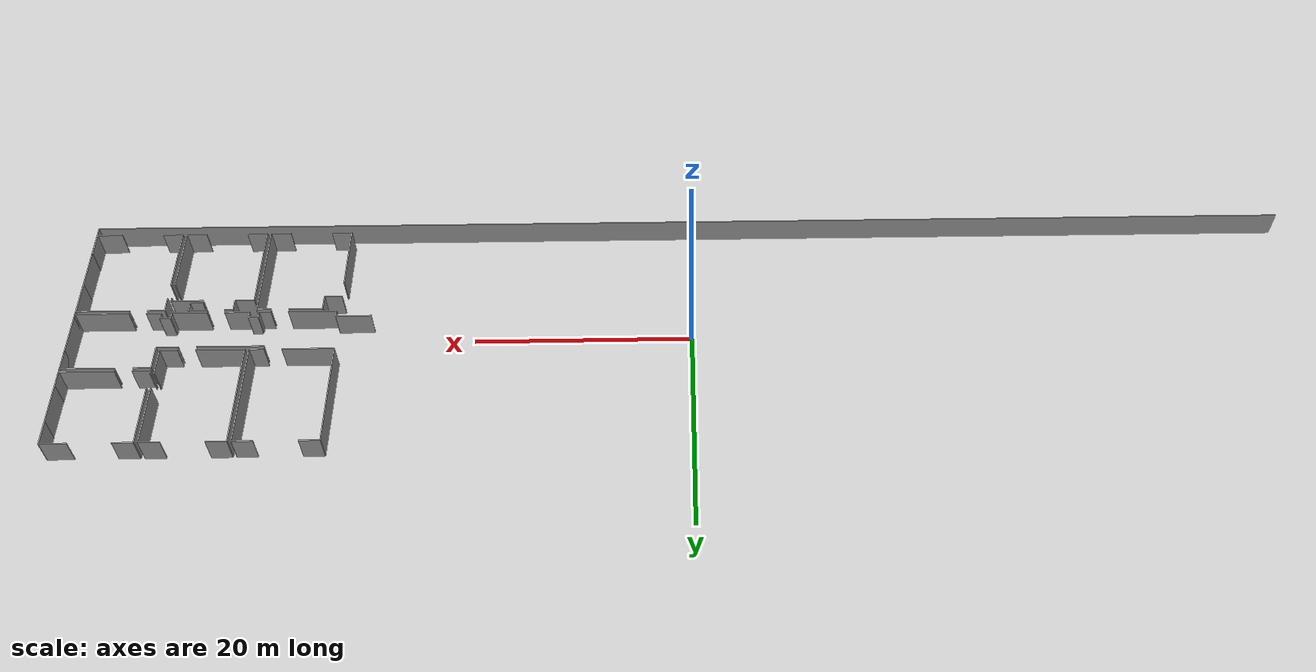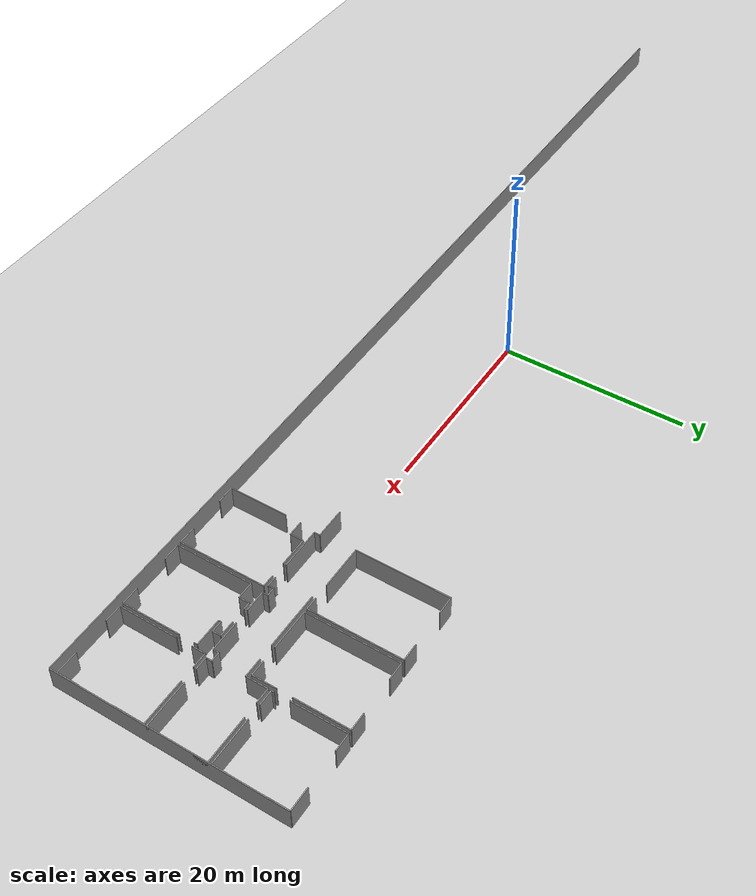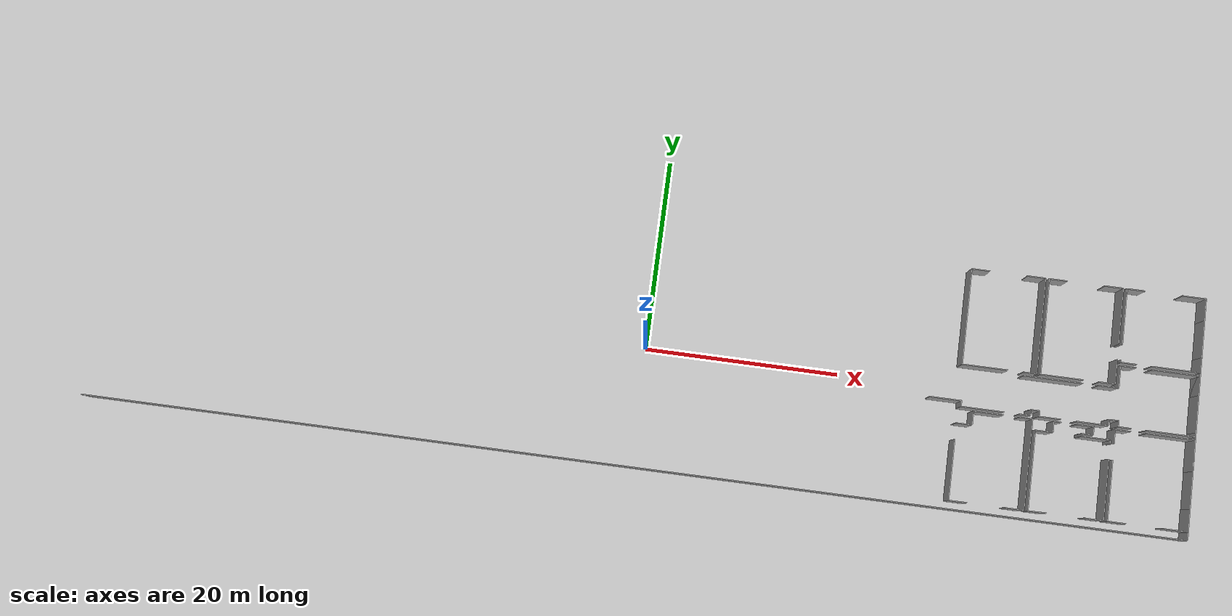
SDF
<sdf version="1.6">
 <world name="default">
  <model name="ground_plane">
   <static>1</static>
   <link name="link">
    <collision name="collision">
     <geometry><plane><normal>0 0 1</normal><size>100 100</size></plane></geometry>
     <surface><friction><ode><mu>100</mu><mu2>50</mu2></ode></friction></surface>
    </collision>
    <visual name="visual">
     <cast_shadows>0</cast_shadows>
     <geometry><plane><normal>0 0 1</normal><size>100 100</size></plane></geometry>
     <material>
      <script><uri>file://media/materials/scripts/gazebo.material</uri><name>Gazebo/Grey</name></script>
     </material>
    </visual>
   </link>
  </model>
  <model name="0510034691_Layout1">
   <static>1</static>
   <link name="Wall_241">
    <collision name="Wall_241_Collision">
     <geometry><box><size>10.0062279163 0.1 2.5</size></box></geometry>
     <pose>5.00311395816 0 1.25 0 0 0</pose>
    </collision>
    <visual name="Wall_241_Visual">
     <pose>5.00311395816 0 1.25 0 0 0</pose>
     <geometry><box><size>10.0062279163 0.1 2.5</size></box></geometry>
     <material>
      <script><uri>file://media/materials/scripts/gazebo.material</uri><name>Gazebo/Grey</name></script>
      <ambient>1 1 1 1</ambient>
     </material>
    </visual>
    <pose>88.8077988764 -10.0321563842 0 0 0 1.57079632679</pose>
   </link>
   <link name="Wall_242">
    <collision name="Wall_242_Collision">
     <geometry><box><size>1.88909224942 0.1 2.5</size></box></geometry>
     <pose>0.944546124711 0 1.25 0 0 0</pose>
    </collision>
    <visual name="Wall_242_Visual">
     <pose>0.944546124711 0 1.25 0 0 0</pose>
     <geometry><box><size>1.88909224942 0.1 2.5</size></box></geometry>
     <material>
      <script><uri>file://media/materials/scripts/gazebo.material</uri><name>Gazebo/Grey</name></script>
      <ambient>1 1 1 1</ambient>
     </material>
    </visual>
    <pose>88.8077988764 -0.0259284679326 0 0 0 0.0</pose>
   </link>
   <link name="Wall_243">
    <collision name="Wall_243_Collision">
     <geometry><box><size>1.88261013244 0.1 2.5</size></box></geometry>
     <pose>0.941305066219 0 1.25 0 0 0</pose>
    </collision>
    <visual name="Wall_243_Visual">
     <pose>0.941305066219 0 1.25 0 0 0</pose>
     <geometry><box><size>1.88261013244 0.1 2.5</size></box></geometry>
     <material>
      <script><uri>file://media/materials/scripts/gazebo.material</uri><name>Gazebo/Grey</name></script>
      <ambient>1 1 1 1</ambient>
     </material>
    </visual>
    <pose>94.596583543 -0.0259284679326 0 0 0 0.0</pose>
   </link>
   <link name="Wall_244">
    <collision name="Wall_244_Collision">
     <geometry><box><size>10.0012710033 0.1 2.5</size></box></geometry>
     <pose>5.00063550167 0 1.25 0 0 0</pose>
    </collision>
    <visual name="Wall_244_Visual">
     <pose>5.00063550167 0 1.25 0 0 0</pose>
     <geometry><box><size>10.0012710033 0.1 2.5</size></box></geometry>
     <material>
      <script><uri>file://media/materials/scripts/gazebo.material</uri><name>Gazebo/Grey</name></script>
      <ambient>1 1 1 1</ambient>
     </material>
    </visual>
    <pose>96.4791936755 -0.0259284679326 0 0 0 -1.57079632679</pose>
   </link>
   <link name="Wall_245">
    <collision name="Wall_245_Collision">
     <geometry><box><size>1.36149876713 0.1 2.5</size></box></geometry>
     <pose>0.680749383563 0 1.25 0 0 0</pose>
    </collision>
    <visual name="Wall_245_Visual">
     <pose>0.680749383563 0 1.25 0 0 0</pose>
     <geometry><box><size>1.36149876713 0.1 2.5</size></box></geometry>
     <material>
      <script><uri>file://media/materials/scripts/gazebo.material</uri><name>Gazebo/Grey</name></script>
      <ambient>1 1 1 1</ambient>
     </material>
    </visual>
    <pose>96.4791936755 -10.0271994713 0 0 0 3.14159265359</pose>
   </link>
   <link name="Wall_246">
    <collision name="Wall_246_Collision">
     <geometry><box><size>4.7130100548 0.1 2.5</size></box></geometry>
     <pose>2.3565050274 0 1.25 0 0 0</pose>
    </collision>
    <visual name="Wall_246_Visual">
     <pose>2.3565050274 0 1.25 0 0 0</pose>
     <geometry><box><size>4.7130100548 0.1 2.5</size></box></geometry>
     <material>
      <script><uri>file://media/materials/scripts/gazebo.material</uri><name>Gazebo/Grey</name></script>
      <ambient>1 1 1 1</ambient>
     </material>
    </visual>
    <pose>93.5208063245 -10.0271994713 0 0 0 -3.14054090241</pose>
   </link>
   <link name="Wall_247">
    <collision name="Wall_247_Collision">
     <geometry><box><size>10.001143903 0.1 2.5</size></box></geometry>
     <pose>5.0005719515 0 1.25 0 0 0</pose>
    </collision>
    <visual name="Wall_247_Visual">
     <pose>5.0005719515 0 1.25 0 0 0</pose>
     <geometry><box><size>10.001143903 0.1 2.5</size></box></geometry>
     <material>
      <script><uri>file://media/materials/scripts/gazebo.material</uri><name>Gazebo/Grey</name></script>
      <ambient>1 1 1 1</ambient>
     </material>
    </visual>
    <pose>96.8486743435 -10.0292330766 0 0 0 1.57079632679</pose>
   </link>
   <link name="Wall_248">
    <collision name="Wall_248_Collision">
     <geometry><box><size>1.8859147411 0.1 2.5</size></box></geometry>
     <pose>0.942957370548 0 1.25 0 0 0</pose>
    </collision>
    <visual name="Wall_248_Visual">
     <pose>0.942957370548 0 1.25 0 0 0</pose>
     <geometry><box><size>1.8859147411 0.1 2.5</size></box></geometry>
     <material>
      <script><uri>file://media/materials/scripts/gazebo.material</uri><name>Gazebo/Grey</name></script>
      <ambient>1 1 1 1</ambient>
     </material>
    </visual>
    <pose>96.8486743435 -0.0280891735936 0 0 0 0.0</pose>
   </link>
   <link name="Wall_249">
    <collision name="Wall_249_Collision">
     <geometry><box><size>1.91476651669 0.1 2.5</size></box></geometry>
     <pose>0.957383258344 0 1.25 0 0 0</pose>
    </collision>
    <visual name="Wall_249_Visual">
     <pose>0.957383258344 0 1.25 0 0 0</pose>
     <geometry><box><size>1.91476651669 0.1 2.5</size></box></geometry>
     <material>
      <script><uri>file://media/materials/scripts/gazebo.material</uri><name>Gazebo/Grey</name></script>
      <ambient>1 1 1 1</ambient>
     </material>
    </visual>
    <pose>102.593355195 -0.0280891735936 0 0 0 0.0</pose>
   </link>
   <link name="Wall_250">
    <collision name="Wall_250_Collision">
     <geometry><box><size>5.84661531813 0.1 2.5</size></box></geometry>
     <pose>2.92330765907 0 1.25 0 0 0</pose>
    </collision>
    <visual name="Wall_250_Visual">
     <pose>2.92330765907 0 1.25 0 0 0</pose>
     <geometry><box><size>5.84661531813 0.1 2.5</size></box></geometry>
     <material>
      <script><uri>file://media/materials/scripts/gazebo.material</uri><name>Gazebo/Grey</name></script>
      <ambient>1 1 1 1</ambient>
     </material>
    </visual>
    <pose>104.508121711 -0.0280891735936 0 0 0 -1.57079632679</pose>
   </link>
   <link name="Wall_251">
    <collision name="Wall_251_Collision">
     <geometry><box><size>2.55789420168 0.1 2.5</size></box></geometry>
     <pose>1.27894710084 0 1.25 0 0 0</pose>
    </collision>
    <visual name="Wall_251_Visual">
     <pose>1.27894710084 0 1.25 0 0 0</pose>
     <geometry><box><size>2.55789420168 0.1 2.5</size></box></geometry>
     <material>
      <script><uri>file://media/materials/scripts/gazebo.material</uri><name>Gazebo/Grey</name></script>
      <ambient>1 1 1 1</ambient>
     </material>
    </visual>
    <pose>104.508121711 -7.46790716592 0 0 0 -1.57079632679</pose>
   </link>
   <link name="Wall_252">
    <collision name="Wall_252_Collision">
     <geometry><box><size>1.62243575078 0.1 2.5</size></box></geometry>
     <pose>0.811217875391 0 1.25 0 0 0</pose>
    </collision>
    <visual name="Wall_252_Visual">
     <pose>0.811217875391 0 1.25 0 0 0</pose>
     <geometry><box><size>1.62243575078 0.1 2.5</size></box></geometry>
     <material>
      <script><uri>file://media/materials/scripts/gazebo.material</uri><name>Gazebo/Grey</name></script>
      <ambient>1 1 1 1</ambient>
     </material>
    </visual>
    <pose>104.508121711 -10.0258013676 0 0 0 3.14159265359</pose>
   </link>
   <link name="Wall_253">
    <collision name="Wall_253_Collision">
     <geometry><box><size>4.42080511446 0.1 2.5</size></box></geometry>
     <pose>2.21040255723 0 1.25 0 0 0</pose>
    </collision>
    <visual name="Wall_253_Visual">
     <pose>2.21040255723 0 1.25 0 0 0</pose>
     <geometry><box><size>4.42080511446 0.1 2.5</size></box></geometry>
     <material>
      <script><uri>file://media/materials/scripts/gazebo.material</uri><name>Gazebo/Grey</name></script>
      <ambient>1 1 1 1</ambient>
     </material>
    </visual>
    <pose>101.269478126 -10.0258013676 0 0 0 -3.14081639016</pose>
   </link>
   <link name="Wall_254">
    <collision name="Wall_254_Collision">
     <geometry><box><size>0.268944304634 0.1 2.5</size></box></geometry>
     <pose>0.134472152317 0 1.25 0 0 0</pose>
    </collision>
    <visual name="Wall_254_Visual">
     <pose>0.134472152317 0 1.25 0 0 0</pose>
     <geometry><box><size>0.268944304634 0.1 2.5</size></box></geometry>
     <material>
      <script><uri>file://media/materials/scripts/gazebo.material</uri><name>Gazebo/Grey</name></script>
      <ambient>1 1 1 1</ambient>
     </material>
    </visual>
    <pose>104.878237881 -7.72998805257 0 0 0 1.57079632679</pose>
   </link>
   <link name="Wall_255">
    <collision name="Wall_255_Collision">
     <geometry><box><size>5.85932535143 0.1 2.5</size></box></geometry>
     <pose>2.92966267572 0 1.25 0 0 0</pose>
    </collision>
    <visual name="Wall_255_Visual">
     <pose>2.92966267572 0 1.25 0 0 0</pose>
     <geometry><box><size>5.85932535143 0.1 2.5</size></box></geometry>
     <material>
      <script><uri>file://media/materials/scripts/gazebo.material</uri><name>Gazebo/Grey</name></script>
      <ambient>1 1 1 1</ambient>
     </material>
    </visual>
    <pose>104.878237881 -5.87915300338 0 0 0 1.57079632679</pose>
   </link>
   <link name="Wall_256">
    <collision name="Wall_256_Collision">
     <geometry><box><size>1.89417626274 0.1 2.5</size></box></geometry>
     <pose>0.947088131371 0 1.25 0 0 0</pose>
    </collision>
    <visual name="Wall_256_Visual">
     <pose>0.947088131371 0 1.25 0 0 0</pose>
     <geometry><box><size>1.89417626274 0.1 2.5</size></box></geometry>
     <material>
      <script><uri>file://media/materials/scripts/gazebo.material</uri><name>Gazebo/Grey</name></script>
      <ambient>1 1 1 1</ambient>
     </material>
    </visual>
    <pose>104.878237881 -0.0198276519484 0 0 0 0.0</pose>
   </link>
   <link name="Wall_257">
    <collision name="Wall_257_Collision">
     <geometry><box><size>2.41490632705 0.1 2.5</size></box></geometry>
     <pose>1.20745316353 0 1.25 0 0 0</pose>
    </collision>
    <visual name="Wall_257_Visual">
     <pose>1.20745316353 0 1.25 0 0 0</pose>
     <geometry><box><size>2.41490632705 0.1 2.5</size></box></geometry>
     <material>
      <script><uri>file://media/materials/scripts/gazebo.material</uri><name>Gazebo/Grey</name></script>
      <ambient>1 1 1 1</ambient>
     </material>
    </visual>
    <pose>110.6108442 -0.0198276519484 0 0 0 0.0</pose>
   </link>
   <link name="Wall_258">
    <collision name="Wall_258_Collision">
     <geometry><box><size>2.28780599405 0.1 2.5</size></box></geometry>
     <pose>1.14390299703 0 1.25 0 0 0</pose>
    </collision>
    <visual name="Wall_258_Visual">
     <pose>1.14390299703 0 1.25 0 0 0</pose>
     <geometry><box><size>2.28780599405 0.1 2.5</size></box></geometry>
     <material>
      <script><uri>file://media/materials/scripts/gazebo.material</uri><name>Gazebo/Grey</name></script>
      <ambient>1 1 1 1</ambient>
     </material>
    </visual>
    <pose>113.025750527 -0.0198276519484 0 0 0 -1.57079632679</pose>
   </link>
   <link name="Wall_259">
    <collision name="Wall_259_Collision">
     <geometry><box><size>1.56333409594 0.1 2.5</size></box></geometry>
     <pose>0.781667047968 0 1.25 0 0 0</pose>
    </collision>
    <visual name="Wall_259_Visual">
     <pose>0.781667047968 0 1.25 0 0 0</pose>
     <geometry><box><size>1.56333409594 0.1 2.5</size></box></geometry>
     <material>
      <script><uri>file://media/materials/scripts/gazebo.material</uri><name>Gazebo/Grey</name></script>
      <ambient>1 1 1 1</ambient>
     </material>
    </visual>
    <pose>113.025750527 -6.17148376929 0 0 0 -1.57079632679</pose>
   </link>
   <link name="Wall_260">
    <collision name="Wall_260_Collision">
     <geometry><box><size>4.93149292051 0.1 2.5</size></box></geometry>
     <pose>2.46574646026 0 1.25 0 0 0</pose>
    </collision>
    <visual name="Wall_260_Visual">
     <pose>2.46574646026 0 1.25 0 0 0</pose>
     <geometry><box><size>4.93149292051 0.1 2.5</size></box></geometry>
     <material>
      <script><uri>file://media/materials/scripts/gazebo.material</uri><name>Gazebo/Grey</name></script>
      <ambient>1 1 1 1</ambient>
     </material>
    </visual>
    <pose>113.025750527 -7.73481786522 0 0 0 3.14159265359</pose>
   </link>
   <link name="Wall_261">
    <collision name="Wall_261_Collision">
     <geometry><box><size>1.65281978714 0.1 2.5</size></box></geometry>
     <pose>0.82640989357 0 1.25 0 0 0</pose>
    </collision>
    <visual name="Wall_261_Visual">
     <pose>0.82640989357 0 1.25 0 0 0</pose>
     <geometry><box><size>1.65281978714 0.1 2.5</size></box></geometry>
     <material>
      <script><uri>file://media/materials/scripts/gazebo.material</uri><name>Gazebo/Grey</name></script>
      <ambient>1 1 1 1</ambient>
     </material>
    </visual>
    <pose>106.531050611 -7.73481786522 0 0 0 3.13867048412</pose>
   </link>
   <link name="Wall_262">
    <collision name="Wall_262_Collision">
     <geometry><box><size>6.23630493912 0.1 2.5</size></box></geometry>
     <pose>3.11815246956 0 1.25 0 0 0</pose>
    </collision>
    <visual name="Wall_262_Visual">
     <pose>3.11815246956 0 1.25 0 0 0</pose>
     <geometry><box><size>6.23630493912 0.1 2.5</size></box></geometry>
     <material>
      <script><uri>file://media/materials/scripts/gazebo.material</uri><name>Gazebo/Grey</name></script>
      <ambient>1 1 1 1</ambient>
     </material>
    </visual>
    <pose>104.890439513 -23.9796385267 0 0 0 1.57079632679</pose>
   </link>
   <link name="Wall_263">
    <collision name="Wall_263_Collision">
     <geometry><box><size>1.45720531788 0.1 2.5</size></box></geometry>
     <pose>0.728602658939 0 1.25 0 0 0</pose>
    </collision>
    <visual name="Wall_263_Visual">
     <pose>0.728602658939 0 1.25 0 0 0</pose>
     <geometry><box><size>1.45720531788 0.1 2.5</size></box></geometry>
     <material>
      <script><uri>file://media/materials/scripts/gazebo.material</uri><name>Gazebo/Grey</name></script>
      <ambient>1 1 1 1</ambient>
     </material>
    </visual>
    <pose>104.890439513 -16.1065354991 0 0 0 1.57079632679</pose>
   </link>
   <link name="Wall_264">
    <collision name="Wall_264_Collision">
     <geometry><box><size>1.60451460383 0.1 2.5</size></box></geometry>
     <pose>0.802257301914 0 1.25 0 0 0</pose>
    </collision>
    <visual name="Wall_264_Visual">
     <pose>0.802257301914 0 1.25 0 0 0</pose>
     <geometry><box><size>1.60451460383 0.1 2.5</size></box></geometry>
     <material>
      <script><uri>file://media/materials/scripts/gazebo.material</uri><name>Gazebo/Grey</name></script>
      <ambient>1 1 1 1</ambient>
     </material>
    </visual>
    <pose>104.890439513 -14.6493301812 0 0 0 0.0</pose>
   </link>
   <link name="Wall_265">
    <collision name="Wall_265_Collision">
     <geometry><box><size>4.90861486057 0.1 2.5</size></box></geometry>
     <pose>2.45430743029 0 1.25 0 0 0</pose>
    </collision>
    <visual name="Wall_265_Visual">
     <pose>2.45430743029 0 1.25 0 0 0</pose>
     <geometry><box><size>4.90861486057 0.1 2.5</size></box></geometry>
     <material>
      <script><uri>file://media/materials/scripts/gazebo.material</uri><name>Gazebo/Grey</name></script>
      <ambient>1 1 1 1</ambient>
     </material>
    </visual>
    <pose>108.100612624 -14.6493301812 0 0 0 0.0</pose>
   </link>
   <link name="Wall_266">
    <collision name="Wall_266_Collision">
     <geometry><box><size>3.22110373929 0.1 2.5</size></box></geometry>
     <pose>1.61055186965 0 1.25 0 0 0</pose>
    </collision>
    <visual name="Wall_266_Visual">
     <pose>1.61055186965 0 1.25 0 0 0</pose>
     <geometry><box><size>3.22110373929 0.1 2.5</size></box></geometry>
     <material>
      <script><uri>file://media/materials/scripts/gazebo.material</uri><name>Gazebo/Grey</name></script>
      <ambient>1 1 1 1</ambient>
     </material>
    </visual>
    <pose>113.009227484 -14.6493301812 0 0 0 -1.57079632679</pose>
   </link>
   <link name="Wall_267">
    <collision name="Wall_267_Collision">
     <geometry><box><size>2.30089732835 0.1 2.5</size></box></geometry>
     <pose>1.15044866418 0 1.25 0 0 0</pose>
    </collision>
    <visual name="Wall_267_Visual">
     <pose>1.15044866418 0 1.25 0 0 0</pose>
     <geometry><box><size>2.30089732835 0.1 2.5</size></box></geometry>
     <material>
      <script><uri>file://media/materials/scripts/gazebo.material</uri><name>Gazebo/Grey</name></script>
      <ambient>1 1 1 1</ambient>
     </material>
    </visual>
    <pose>113.009227484 -21.6795038003 0 0 0 -1.57079632679</pose>
   </link>
   <link name="Wall_268">
    <collision name="Wall_268_Collision">
     <geometry><box><size>2.37804723048 0.1 2.5</size></box></geometry>
     <pose>1.18902361524 0 1.25 0 0 0</pose>
    </collision>
    <visual name="Wall_268_Visual">
     <pose>1.18902361524 0 1.25 0 0 0</pose>
     <geometry><box><size>2.37804723048 0.1 2.5</size></box></geometry>
     <material>
      <script><uri>file://media/materials/scripts/gazebo.material</uri><name>Gazebo/Grey</name></script>
      <ambient>1 1 1 1</ambient>
     </material>
    </visual>
    <pose>113.009227484 -23.9804011287 0 0 0 3.14159265359</pose>
   </link>
   <link name="Wall_269">
    <collision name="Wall_269_Collision">
     <geometry><box><size>1.88108508302 0.1 2.5</size></box></geometry>
     <pose>0.940542541512 0 1.25 0 0 0</pose>
    </collision>
    <visual name="Wall_269_Visual">
     <pose>0.940542541512 0 1.25 0 0 0</pose>
     <geometry><box><size>1.88108508302 0.1 2.5</size></box></geometry>
     <material>
      <script><uri>file://media/materials/scripts/gazebo.material</uri><name>Gazebo/Grey</name></script>
      <ambient>1 1 1 1</ambient>
     </material>
    </visual>
    <pose>106.771524441 -23.9804011287 0 0 0 3.14118724821</pose>
   </link>
   <link name="Wall_270">
    <collision name="Wall_270_Collision">
     <geometry><box><size>8.20864790666 0.1 2.5</size></box></geometry>
     <pose>4.10432395333 0 1.25 0 0 0</pose>
    </collision>
    <visual name="Wall_270_Visual">
     <pose>4.10432395333 0 1.25 0 0 0</pose>
     <geometry><box><size>8.20864790666 0.1 2.5</size></box></geometry>
     <material>
      <script><uri>file://media/materials/scripts/gazebo.material</uri><name>Gazebo/Grey</name></script>
      <ambient>1 1 1 1</ambient>
     </material>
    </visual>
    <pose>96.8490556445 -23.9845954396 0 0 0 1.57079632679</pose>
   </link>
   <link name="Wall_271">
    <collision name="Wall_271_Collision">
     <geometry><box><size>1.78169246803 0.1 2.5</size></box></geometry>
     <pose>0.890846234017 0 1.25 0 0 0</pose>
    </collision>
    <visual name="Wall_271_Visual">
     <pose>0.890846234017 0 1.25 0 0 0</pose>
     <geometry><box><size>1.78169246803 0.1 2.5</size></box></geometry>
     <material>
      <script><uri>file://media/materials/scripts/gazebo.material</uri><name>Gazebo/Grey</name></script>
      <ambient>1 1 1 1</ambient>
     </material>
    </visual>
    <pose>96.8490556445 -15.775947533 0 0 0 0.0</pose>
   </link>
   <link name="Wall_272">
    <collision name="Wall_272_Collision">
     <geometry><box><size>1.12623605074 0.1 2.5</size></box></geometry>
     <pose>0.563118025369 0 1.25 0 0 0</pose>
    </collision>
    <visual name="Wall_272_Visual">
     <pose>0.563118025369 0 1.25 0 0 0</pose>
     <geometry><box><size>1.12623605074 0.1 2.5</size></box></geometry>
     <material>
      <script><uri>file://media/materials/scripts/gazebo.material</uri><name>Gazebo/Grey</name></script>
      <ambient>1 1 1 1</ambient>
     </material>
    </visual>
    <pose>98.6307481126 -15.775947533 0 0 0 1.57079632679</pose>
   </link>
   <link name="Wall_273">
    <collision name="Wall_273_Collision">
     <geometry><box><size>0.790055669946 0.1 2.5</size></box></geometry>
     <pose>0.395027834973 0 1.25 0 0 0</pose>
    </collision>
    <visual name="Wall_273_Visual">
     <pose>0.395027834973 0 1.25 0 0 0</pose>
     <geometry><box><size>0.790055669946 0.1 2.5</size></box></geometry>
     <material>
      <script><uri>file://media/materials/scripts/gazebo.material</uri><name>Gazebo/Grey</name></script>
      <ambient>1 1 1 1</ambient>
     </material>
    </visual>
    <pose>98.6307481126 -14.6497114822 0 0 0 0.0</pose>
   </link>
   <link name="Wall_274">
    <collision name="Wall_274_Collision">
     <geometry><box><size>1.73936805714 0.1 2.5</size></box></geometry>
     <pose>0.869684028572 0 1.25 0 0 0</pose>
    </collision>
    <visual name="Wall_274_Visual">
     <pose>0.869684028572 0 1.25 0 0 0</pose>
     <geometry><box><size>1.73936805714 0.1 2.5</size></box></geometry>
     <material>
      <script><uri>file://media/materials/scripts/gazebo.material</uri><name>Gazebo/Grey</name></script>
      <ambient>1 1 1 1</ambient>
     </material>
    </visual>
    <pose>100.985535982 -14.6497114822 0 0 0 0.0</pose>
   </link>
   <link name="Wall_275">
    <collision name="Wall_275_Collision">
     <geometry><box><size>0.8719082844 0.1 2.5</size></box></geometry>
     <pose>0.4359541422 0 1.25 0 0 0</pose>
    </collision>
    <visual name="Wall_275_Visual">
     <pose>0.4359541422 0 1.25 0 0 0</pose>
     <geometry><box><size>0.8719082844 0.1 2.5</size></box></geometry>
     <material>
      <script><uri>file://media/materials/scripts/gazebo.material</uri><name>Gazebo/Grey</name></script>
      <ambient>1 1 1 1</ambient>
     </material>
    </visual>
    <pose>102.724904039 -14.6497114822 0 0 0 -1.57079632679</pose>
   </link>
   <link name="Wall_276">
    <collision name="Wall_276_Collision">
     <geometry><box><size>1.18393960192 0.1 2.5</size></box></geometry>
     <pose>0.591969800961 0 1.25 0 0 0</pose>
    </collision>
    <visual name="Wall_276_Visual">
     <pose>0.591969800961 0 1.25 0 0 0</pose>
     <geometry><box><size>1.18393960192 0.1 2.5</size></box></geometry>
     <material>
      <script><uri>file://media/materials/scripts/gazebo.material</uri><name>Gazebo/Grey</name></script>
      <ambient>1 1 1 1</ambient>
     </material>
    </visual>
    <pose>102.724904039 -15.5216197666 0 0 0 3.14159265359</pose>
   </link>
   <link name="Wall_277">
    <collision name="Wall_277_Collision">
     <geometry><box><size>0.263097689316 0.1 2.5</size></box></geometry>
     <pose>0.131548844658 0 1.25 0 0 0</pose>
    </collision>
    <visual name="Wall_277_Visual">
     <pose>0.131548844658 0 1.25 0 0 0</pose>
     <geometry><box><size>0.263097689316 0.1 2.5</size></box></geometry>
     <material>
      <script><uri>file://media/materials/scripts/gazebo.material</uri><name>Gazebo/Grey</name></script>
      <ambient>1 1 1 1</ambient>
     </material>
    </visual>
    <pose>101.540964437 -15.5216197666 0 0 0 -1.57079632679</pose>
   </link>
   <link name="Wall_278">
    <collision name="Wall_278_Collision">
     <geometry><box><size>2.96715727395 0.1 2.5</size></box></geometry>
     <pose>1.48357863698 0 1.25 0 0 0</pose>
    </collision>
    <visual name="Wall_278_Visual">
     <pose>1.48357863698 0 1.25 0 0 0</pose>
     <geometry><box><size>2.96715727395 0.1 2.5</size></box></geometry>
     <material>
      <script><uri>file://media/materials/scripts/gazebo.material</uri><name>Gazebo/Grey</name></script>
      <ambient>1 1 1 1</ambient>
     </material>
    </visual>
    <pose>101.540964437 -15.784717456 0 0 0 0.0</pose>
   </link>
   <link name="Wall_279">
    <collision name="Wall_279_Collision">
     <geometry><box><size>0.365413457383 0.1 2.5</size></box></geometry>
     <pose>0.182706728692 0 1.25 0 0 0</pose>
    </collision>
    <visual name="Wall_279_Visual">
     <pose>0.182706728692 0 1.25 0 0 0</pose>
     <geometry><box><size>0.365413457383 0.1 2.5</size></box></geometry>
     <material>
      <script><uri>file://media/materials/scripts/gazebo.material</uri><name>Gazebo/Grey</name></script>
      <ambient>1 1 1 1</ambient>
     </material>
    </visual>
    <pose>104.508121711 -15.784717456 0 0 0 -1.57079632679</pose>
   </link>
   <link name="Wall_280">
    <collision name="Wall_280_Collision">
     <geometry><box><size>6.23910114645 0.1 2.5</size></box></geometry>
     <pose>3.11955057322 0 1.25 0 0 0</pose>
    </collision>
    <visual name="Wall_280_Visual">
     <pose>3.11955057322 0 1.25 0 0 0</pose>
     <geometry><box><size>6.23910114645 0.1 2.5</size></box></geometry>
     <material>
      <script><uri>file://media/materials/scripts/gazebo.material</uri><name>Gazebo/Grey</name></script>
      <ambient>1 1 1 1</ambient>
     </material>
    </visual>
    <pose>104.508121711 -17.7269376446 0 0 0 -1.57079632679</pose>
   </link>
   <link name="Wall_281">
    <collision name="Wall_281_Collision">
     <geometry><box><size>1.90129388139 0.1 2.5</size></box></geometry>
     <pose>0.950646940695 0 1.25 0 0 0</pose>
    </collision>
    <visual name="Wall_281_Visual">
     <pose>0.950646940695 0 1.25 0 0 0</pose>
     <geometry><box><size>1.90129388139 0.1 2.5</size></box></geometry>
     <material>
      <script><uri>file://media/materials/scripts/gazebo.material</uri><name>Gazebo/Grey</name></script>
      <ambient>1 1 1 1</ambient>
     </material>
    </visual>
    <pose>104.508121711 -23.966038791 0 0 0 3.14159265359</pose>
   </link>
   <link name="Wall_282">
    <collision name="Wall_282_Collision">
     <geometry><box><size>1.87850747869 0.1 2.5</size></box></geometry>
     <pose>0.939253739343 0 1.25 0 0 0</pose>
    </collision>
    <visual name="Wall_282_Visual">
     <pose>0.939253739343 0 1.25 0 0 0</pose>
     <geometry><box><size>1.87850747869 0.1 2.5</size></box></geometry>
     <material>
      <script><uri>file://media/materials/scripts/gazebo.material</uri><name>Gazebo/Grey</name></script>
      <ambient>1 1 1 1</ambient>
     </material>
    </visual>
    <pose>98.727471466 -23.966038791 0 0 0 -3.13171409274</pose>
   </link>
   <link name="Wall_283">
    <collision name="Wall_283_Collision">
     <geometry><box><size>6.23783014311 0.1 2.5</size></box></geometry>
     <pose>3.11891507156 0 1.25 0 0 0</pose>
    </collision>
    <visual name="Wall_283_Visual">
     <pose>3.11891507156 0 1.25 0 0 0</pose>
     <geometry><box><size>6.23783014311 0.1 2.5</size></box></geometry>
     <material>
      <script><uri>file://media/materials/scripts/gazebo.material</uri><name>Gazebo/Grey</name></script>
      <ambient>1 1 1 1</ambient>
     </material>
    </visual>
    <pose>88.8136454918 -23.988154249 0 0 0 1.57079632679</pose>
   </link>
   <link name="Wall_284">
    <collision name="Wall_284_Collision">
     <geometry><box><size>0.0467729225451 0.1 2.5</size></box></geometry>
     <pose>0.0233864612725 0 1.25 0 0 0</pose>
    </collision>
    <visual name="Wall_284_Visual">
     <pose>0.0233864612725 0 1.25 0 0 0</pose>
     <geometry><box><size>0.0467729225451 0.1 2.5</size></box></geometry>
     <material>
      <script><uri>file://media/materials/scripts/gazebo.material</uri><name>Gazebo/Grey</name></script>
      <ambient>1 1 1 1</ambient>
     </material>
    </visual>
    <pose>88.8136454918 -16.1411067897 0 0 0 1.57079632679</pose>
   </link>
   <link name="Wall_285">
    <collision name="Wall_285_Collision">
     <geometry><box><size>1.61430132947 0.1 2.5</size></box></geometry>
     <pose>0.807150664735 0 1.25 0 0 0</pose>
    </collision>
    <visual name="Wall_285_Visual">
     <pose>0.807150664735 0 1.25 0 0 0</pose>
     <geometry><box><size>1.61430132947 0.1 2.5</size></box></geometry>
     <material>
      <script><uri>file://media/materials/scripts/gazebo.material</uri><name>Gazebo/Grey</name></script>
      <ambient>1 1 1 1</ambient>
     </material>
    </visual>
    <pose>88.8136454918 -16.0943338672 0 0 0 0.0</pose>
   </link>
   <link name="Wall_286">
    <collision name="Wall_286_Collision">
     <geometry><box><size>1.42365082997 0.1 2.5</size></box></geometry>
     <pose>0.711825414983 0 1.25 0 0 0</pose>
    </collision>
    <visual name="Wall_286_Visual">
     <pose>0.711825414983 0 1.25 0 0 0</pose>
     <geometry><box><size>1.42365082997 0.1 2.5</size></box></geometry>
     <material>
      <script><uri>file://media/materials/scripts/gazebo.material</uri><name>Gazebo/Grey</name></script>
      <ambient>1 1 1 1</ambient>
     </material>
    </visual>
    <pose>90.4279468212 -16.0943338672 0 0 0 1.57079632679</pose>
   </link>
   <link name="Wall_287">
    <collision name="Wall_287_Collision">
     <geometry><box><size>3.09451180762 0.1 2.5</size></box></geometry>
     <pose>1.54725590381 0 1.25 0 0 0</pose>
    </collision>
    <visual name="Wall_287_Visual">
     <pose>1.54725590381 0 1.25 0 0 0</pose>
     <geometry><box><size>3.09451180762 0.1 2.5</size></box></geometry>
     <material>
      <script><uri>file://media/materials/scripts/gazebo.material</uri><name>Gazebo/Grey</name></script>
      <ambient>1 1 1 1</ambient>
     </material>
    </visual>
    <pose>90.4279468212 -14.6706830372 0 0 0 0.0</pose>
   </link>
   <link name="Wall_288">
    <collision name="Wall_288_Collision">
     <geometry><box><size>1.32629197488 0.1 2.5</size></box></geometry>
     <pose>0.663145987442 0 1.25 0 0 0</pose>
    </collision>
    <visual name="Wall_288_Visual">
     <pose>0.663145987442 0 1.25 0 0 0</pose>
     <geometry><box><size>1.32629197488 0.1 2.5</size></box></geometry>
     <material>
      <script><uri>file://media/materials/scripts/gazebo.material</uri><name>Gazebo/Grey</name></script>
      <ambient>1 1 1 1</ambient>
     </material>
    </visual>
    <pose>95.146546684 -14.6706830372 0 0 0 0.0</pose>
   </link>
   <link name="Wall_289">
    <collision name="Wall_289_Collision">
     <geometry><box><size>9.3075573858 0.1 2.5</size></box></geometry>
     <pose>4.6537786929 0 1.25 0 0 0</pose>
    </collision>
    <visual name="Wall_289_Visual">
     <pose>4.6537786929 0 1.25 0 0 0</pose>
     <geometry><box><size>9.3075573858 0.1 2.5</size></box></geometry>
     <material>
      <script><uri>file://media/materials/scripts/gazebo.material</uri><name>Gazebo/Grey</name></script>
      <ambient>1 1 1 1</ambient>
     </material>
    </visual>
    <pose>96.4728386588 -14.6706830372 0 0 0 -1.57079632679</pose>
   </link>
   <link name="Wall_290">
    <collision name="Wall_290_Collision">
     <geometry><box><size>1.88934645009 0.1 2.5</size></box></geometry>
     <pose>0.944673225044 0 1.25 0 0 0</pose>
    </collision>
    <visual name="Wall_290_Visual">
     <pose>0.944673225044 0 1.25 0 0 0</pose>
     <geometry><box><size>1.88934645009 0.1 2.5</size></box></geometry>
     <material>
      <script><uri>file://media/materials/scripts/gazebo.material</uri><name>Gazebo/Grey</name></script>
      <ambient>1 1 1 1</ambient>
     </material>
    </visual>
    <pose>96.4728386588 -23.978240423 0 0 0 3.14159265359</pose>
   </link>
   <link name="Wall_291">
    <collision name="Wall_291_Collision">
     <geometry><box><size>1.86789280277 0.1 2.5</size></box></geometry>
     <pose>0.933946401386 0 1.25 0 0 0</pose>
    </collision>
    <visual name="Wall_291_Visual">
     <pose>0.933946401386 0 1.25 0 0 0</pose>
     <geometry><box><size>1.86789280277 0.1 2.5</size></box></geometry>
     <material>
      <script><uri>file://media/materials/scripts/gazebo.material</uri><name>Gazebo/Grey</name></script>
      <ambient>1 1 1 1</ambient>
     </material>
    </visual>
    <pose>90.6815119856 -23.978240423 0 0 0 -3.13628513674</pose>
   </link>
   <link name="Wall_325">
    <collision name="Wall_325_Collision">
     <geometry><box><size>6.0910292585 0.1 2.5</size></box></geometry>
     <pose>3.04551462925 0 1.25 0 0 0</pose>
    </collision>
    <visual name="Wall_325_Visual">
     <pose>3.04551462925 0 1.25 0 0 0</pose>
     <geometry><box><size>6.0910292585 0.1 2.5</size></box></geometry>
     <material>
      <script><uri>file://media/materials/scripts/gazebo.material</uri><name>Gazebo/Grey</name></script>
      <ambient>1 1 1 1</ambient>
     </material>
    </visual>
    <pose>95.1508680953 -10.3829533033 0 0 0 0.0</pose>
   </link>
   <link name="Wall_326">
    <collision name="Wall_326_Collision">
     <geometry><box><size>2.02292890007 0.1 2.5</size></box></geometry>
     <pose>1.01146445004 0 1.25 0 0 0</pose>
    </collision>
    <visual name="Wall_326_Visual">
     <pose>1.01146445004 0 1.25 0 0 0</pose>
     <geometry><box><size>2.02292890007 0.1 2.5</size></box></geometry>
     <material>
      <script><uri>file://media/materials/scripts/gazebo.material</uri><name>Gazebo/Grey</name></script>
      <ambient>1 1 1 1</ambient>
     </material>
    </visual>
    <pose>102.864714406 -10.3829533033 0 0 0 0.0</pose>
   </link>
   <link name="Wall_327">
    <collision name="Wall_327_Collision">
     <geometry><box><size>2.31030275299 0.1 2.5</size></box></geometry>
     <pose>1.1551513765 0 1.25 0 0 0</pose>
    </collision>
    <visual name="Wall_327_Visual">
     <pose>1.1551513765 0 1.25 0 0 0</pose>
     <geometry><box><size>2.31030275299 0.1 2.5</size></box></geometry>
     <material>
      <script><uri>file://media/materials/scripts/gazebo.material</uri><name>Gazebo/Grey</name></script>
      <ambient>1 1 1 1</ambient>
     </material>
    </visual>
    <pose>104.887643306 -10.3829533033 0 0 0 1.57079632679</pose>
   </link>
   <link name="Wall_328">
    <collision name="Wall_328_Collision">
     <geometry><box><size>1.62268995145 0.1 2.5</size></box></geometry>
     <pose>0.811344975724 0 1.25 0 0 0</pose>
    </collision>
    <visual name="Wall_328_Visual">
     <pose>0.811344975724 0 1.25 0 0 0</pose>
     <geometry><box><size>1.62268995145 0.1 2.5</size></box></geometry>
     <material>
      <script><uri>file://media/materials/scripts/gazebo.material</uri><name>Gazebo/Grey</name></script>
      <ambient>1 1 1 1</ambient>
     </material>
    </visual>
    <pose>104.887643306 -8.07265055034 0 0 0 0.0</pose>
   </link>
   <link name="Wall_329">
    <collision name="Wall_329_Collision">
     <geometry><box><size>4.91242787056 0.1 2.5</size></box></geometry>
     <pose>2.45621393528 0 1.25 0 0 0</pose>
    </collision>
    <visual name="Wall_329_Visual">
     <pose>2.45621393528 0 1.25 0 0 0</pose>
     <geometry><box><size>4.91242787056 0.1 2.5</size></box></geometry>
     <material>
      <script><uri>file://media/materials/scripts/gazebo.material</uri><name>Gazebo/Grey</name></script>
      <ambient>1 1 1 1</ambient>
     </material>
    </visual>
    <pose>108.13365871 -8.07265055034 0 0 0 0.0</pose>
   </link>
   <link name="Wall_330">
    <collision name="Wall_330_Collision">
     <geometry><box><size>2.02292890007 0.1 2.5</size></box></geometry>
     <pose>1.01146445004 0 1.25 0 0 0</pose>
    </collision>
    <visual name="Wall_330_Visual">
     <pose>1.01146445004 0 1.25 0 0 0</pose>
     <geometry><box><size>2.02292890007 0.1 2.5</size></box></geometry>
     <material>
      <script><uri>file://media/materials/scripts/gazebo.material</uri><name>Gazebo/Grey</name></script>
      <ambient>1 1 1 1</ambient>
     </material>
    </visual>
    <pose>113.046086581 -8.07265055034 0 0 0 -1.57079632679</pose>
   </link>
   <link name="Wall_331">
    <collision name="Wall_331_Collision">
     <geometry><box><size>0.422354406569 0.1 2.5</size></box></geometry>
     <pose>0.211177203284 0 1.25 0 0 0</pose>
    </collision>
    <visual name="Wall_331_Visual">
     <pose>0.211177203284 0 1.25 0 0 0</pose>
     <geometry><box><size>0.422354406569 0.1 2.5</size></box></geometry>
     <material>
      <script><uri>file://media/materials/scripts/gazebo.material</uri><name>Gazebo/Grey</name></script>
      <ambient>1 1 1 1</ambient>
     </material>
    </visual>
    <pose>113.046086581 -13.9191387681 0 0 0 -1.57079632679</pose>
   </link>
   <link name="Wall_332">
    <collision name="Wall_332_Collision">
     <geometry><box><size>4.9353059305 0.1 2.5</size></box></geometry>
     <pose>2.46765296525 0 1.25 0 0 0</pose>
    </collision>
    <visual name="Wall_332_Visual">
     <pose>2.46765296525 0 1.25 0 0 0</pose>
     <geometry><box><size>4.9353059305 0.1 2.5</size></box></geometry>
     <material>
      <script><uri>file://media/materials/scripts/gazebo.material</uri><name>Gazebo/Grey</name></script>
      <ambient>1 1 1 1</ambient>
     </material>
    </visual>
    <pose>113.046086581 -14.3414931747 0 0 0 3.14159265359</pose>
   </link>
   <link name="Wall_333">
    <collision name="Wall_333_Collision">
     <geometry><box><size>1.35603345281 0.1 2.5</size></box></geometry>
     <pose>0.678016726404 0 1.25 0 0 0</pose>
    </collision>
    <visual name="Wall_333_Visual">
     <pose>0.678016726404 0 1.25 0 0 0</pose>
     <geometry><box><size>1.35603345281 0.1 2.5</size></box></geometry>
     <material>
      <script><uri>file://media/materials/scripts/gazebo.material</uri><name>Gazebo/Grey</name></script>
      <ambient>1 1 1 1</ambient>
     </material>
    </visual>
    <pose>106.532575815 -14.3414931747 0 0 0 3.14159265359</pose>
   </link>
   <link name="Wall_334">
    <collision name="Wall_334_Collision">
     <geometry><box><size>0.622410330715 0.1 2.5</size></box></geometry>
     <pose>0.311205165358 0 1.25 0 0 0</pose>
    </collision>
    <visual name="Wall_334_Visual">
     <pose>0.311205165358 0 1.25 0 0 0</pose>
     <geometry><box><size>0.622410330715 0.1 2.5</size></box></geometry>
     <material>
      <script><uri>file://media/materials/scripts/gazebo.material</uri><name>Gazebo/Grey</name></script>
      <ambient>1 1 1 1</ambient>
     </material>
    </visual>
    <pose>105.176542363 -14.3414931747 0 0 0 1.57079632679</pose>
   </link>
   <link name="Wall_335">
    <collision name="Wall_335_Collision">
     <geometry><box><size>0.978037062457 0.1 2.5</size></box></geometry>
     <pose>0.489018531229 0 1.25 0 0 0</pose>
    </collision>
    <visual name="Wall_335_Visual">
     <pose>0.489018531229 0 1.25 0 0 0</pose>
     <geometry><box><size>0.978037062457 0.1 2.5</size></box></geometry>
     <material>
      <script><uri>file://media/materials/scripts/gazebo.material</uri><name>Gazebo/Grey</name></script>
      <ambient>1 1 1 1</ambient>
     </material>
    </visual>
    <pose>105.176542363 -13.719082844 0 0 0 3.14159265359</pose>
   </link>
   <link name="Wall_336">
    <collision name="Wall_336_Collision">
     <geometry><box><size>0.622410330715 0.1 2.5</size></box></geometry>
     <pose>0.311205165358 0 1.25 0 0 0</pose>
    </collision>
    <visual name="Wall_336_Visual">
     <pose>0.311205165358 0 1.25 0 0 0</pose>
     <geometry><box><size>0.622410330715 0.1 2.5</size></box></geometry>
     <material>
      <script><uri>file://media/materials/scripts/gazebo.material</uri><name>Gazebo/Grey</name></script>
      <ambient>1 1 1 1</ambient>
     </material>
    </visual>
    <pose>104.1985053 -13.719082844 0 0 0 -1.57079632679</pose>
   </link>
   <link name="Wall_337">
    <collision name="Wall_337_Collision">
     <geometry><box><size>3.24563410356 0.1 2.5</size></box></geometry>
     <pose>1.62281705178 0 1.25 0 0 0</pose>
    </collision>
    <visual name="Wall_337_Visual">
     <pose>1.62281705178 0 1.25 0 0 0</pose>
     <geometry><box><size>3.24563410356 0.1 2.5</size></box></geometry>
     <material>
      <script><uri>file://media/materials/scripts/gazebo.material</uri><name>Gazebo/Grey</name></script>
      <ambient>1 1 1 1</ambient>
     </material>
    </visual>
    <pose>104.1985053 -14.3414931747 0 0 0 3.14159265359</pose>
   </link>
   <link name="Wall_338">
    <collision name="Wall_338_Collision">
     <geometry><box><size>2.2452273825 0.1 2.5</size></box></geometry>
     <pose>1.12261369125 0 1.25 0 0 0</pose>
    </collision>
    <visual name="Wall_338_Visual">
     <pose>1.12261369125 0 1.25 0 0 0</pose>
     <geometry><box><size>2.2452273825 0.1 2.5</size></box></geometry>
     <material>
      <script><uri>file://media/materials/scripts/gazebo.material</uri><name>Gazebo/Grey</name></script>
      <ambient>1 1 1 1</ambient>
     </material>
    </visual>
    <pose>99.352296703 -14.3414931747 0 0 0 3.14159265359</pose>
   </link>
   <link name="Wall_339">
    <collision name="Wall_339_Collision">
     <geometry><box><size>0.578052314497 0.1 2.5</size></box></geometry>
     <pose>0.289026157249 0 1.25 0 0 0</pose>
    </collision>
    <visual name="Wall_339_Visual">
     <pose>0.289026157249 0 1.25 0 0 0</pose>
     <geometry><box><size>0.578052314497 0.1 2.5</size></box></geometry>
     <material>
      <script><uri>file://media/materials/scripts/gazebo.material</uri><name>Gazebo/Grey</name></script>
      <ambient>1 1 1 1</ambient>
     </material>
    </visual>
    <pose>97.1070693205 -14.3414931747 0 0 0 1.57079632679</pose>
   </link>
   <link name="Wall_340">
    <collision name="Wall_340_Collision">
     <geometry><box><size>0.889193929688 0.1 2.5</size></box></geometry>
     <pose>0.444596964844 0 1.25 0 0 0</pose>
    </collision>
    <visual name="Wall_340_Visual">
     <pose>0.444596964844 0 1.25 0 0 0</pose>
     <geometry><box><size>0.889193929688 0.1 2.5</size></box></geometry>
     <material>
      <script><uri>file://media/materials/scripts/gazebo.material</uri><name>Gazebo/Grey</name></script>
      <ambient>1 1 1 1</ambient>
     </material>
    </visual>
    <pose>97.1070693205 -13.7634408602 0 0 0 3.14159265359</pose>
   </link>
   <link name="Wall_341">
    <collision name="Wall_341_Collision">
     <geometry><box><size>0.600294872773 0.1 2.5</size></box></geometry>
     <pose>0.300147436386 0 1.25 0 0 0</pose>
    </collision>
    <visual name="Wall_341_Visual">
     <pose>0.300147436386 0 1.25 0 0 0</pose>
     <geometry><box><size>0.600294872773 0.1 2.5</size></box></geometry>
     <material>
      <script><uri>file://media/materials/scripts/gazebo.material</uri><name>Gazebo/Grey</name></script>
      <ambient>1 1 1 1</ambient>
     </material>
    </visual>
    <pose>96.2178753908 -13.7634408602 0 0 0 -1.57079632679</pose>
   </link>
   <link name="Wall_342">
    <collision name="Wall_342_Collision">
     <geometry><box><size>1.08924985383 0.1 2.5</size></box></geometry>
     <pose>0.544624926917 0 1.25 0 0 0</pose>
    </collision>
    <visual name="Wall_342_Visual">
     <pose>0.544624926917 0 1.25 0 0 0</pose>
     <geometry><box><size>1.08924985383 0.1 2.5</size></box></geometry>
     <material>
      <script><uri>file://media/materials/scripts/gazebo.material</uri><name>Gazebo/Grey</name></script>
      <ambient>1 1 1 1</ambient>
     </material>
    </visual>
    <pose>96.2178753908 -14.363735733 0 0 0 3.14159265359</pose>
   </link>
   <link name="Wall_343">
    <collision name="Wall_343_Collision">
     <geometry><box><size>4.40987315387 0.1 2.5</size></box></geometry>
     <pose>2.20493657693 0 1.25 0 0 0</pose>
    </collision>
    <visual name="Wall_343_Visual">
     <pose>2.20493657693 0 1.25 0 0 0</pose>
     <geometry><box><size>4.40987315387 0.1 2.5</size></box></geometry>
     <material>
      <script><uri>file://media/materials/scripts/gazebo.material</uri><name>Gazebo/Grey</name></script>
      <ambient>1 1 1 1</ambient>
     </material>
    </visual>
    <pose>93.5241109332 -14.363735733 0 0 0 3.14159265359</pose>
   </link>
   <link name="Wall_344">
    <collision name="Wall_344_Collision">
     <geometry><box><size>0.59889676911 0.1 2.5</size></box></geometry>
     <pose>0.299448384555 0 1.25 0 0 0</pose>
    </collision>
    <visual name="Wall_344_Visual">
     <pose>0.299448384555 0 1.25 0 0 0</pose>
     <geometry><box><size>0.59889676911 0.1 2.5</size></box></geometry>
     <material>
      <script><uri>file://media/materials/scripts/gazebo.material</uri><name>Gazebo/Grey</name></script>
      <ambient>1 1 1 1</ambient>
     </material>
    </visual>
    <pose>89.1142377793 -14.363735733 0 0 0 1.57079632679</pose>
   </link>
   <link name="Wall_345">
    <collision name="Wall_345_Collision">
     <geometry><box><size>3.26330104985 0.1 2.5</size></box></geometry>
     <pose>1.63165052492 0 1.25 0 0 0</pose>
    </collision>
    <visual name="Wall_345_Visual">
     <pose>1.63165052492 0 1.25 0 0 0</pose>
     <geometry><box><size>3.26330104985 0.1 2.5</size></box></geometry>
     <material>
      <script><uri>file://media/materials/scripts/gazebo.material</uri><name>Gazebo/Grey</name></script>
      <ambient>1 1 1 1</ambient>
     </material>
    </visual>
    <pose>89.1142377793 -13.7648389639 0 0 0 3.14159265359</pose>
   </link>
   <link name="Wall_365">
    <collision name="Wall_365_Collision">
     <geometry><box><size>24.8463356974 0.1 2.5</size></box></geometry>
     <pose>12.4231678487 0 1.25 0 0 0</pose>
    </collision>
    <visual name="Wall_365_Visual">
     <pose>12.4231678487 0 1.25 0 0 0</pose>
     <geometry><box><size>24.8463356974 0.1 2.5</size></box></geometry>
     <material>
      <script><uri>file://media/materials/scripts/gazebo.material</uri><name>Gazebo/Grey</name></script>
      <ambient>1 1 1 1</ambient>
     </material>
    </visual>
    <pose>113.046086581 -24.8463356974 0 0 0 1.57079632679</pose>
   </link>
   <link name="Wall_366">
    <collision name="Wall_366_Collision">
     <geometry><box><size>113.046086581 0.1 2.5</size></box></geometry>
     <pose>56.5230432904 0 1.25 0 0 0</pose>
    </collision>
    <visual name="Wall_366_Visual">
     <pose>56.5230432904 0 1.25 0 0 0</pose>
     <geometry><box><size>113.046086581 0.1 2.5</size></box></geometry>
     <material>
      <script><uri>file://media/materials/scripts/gazebo.material</uri><name>Gazebo/Grey</name></script>
      <ambient>1 1 1 1</ambient>
     </material>
    </visual>
    <pose>113.046086581 -24.8463356974 0 0 0 3.14159265359</pose>
   </link>
   <pose>-56.5 12.4463356974 0 0 0 0</pose>
  </model>
 </world>
</sdf>
